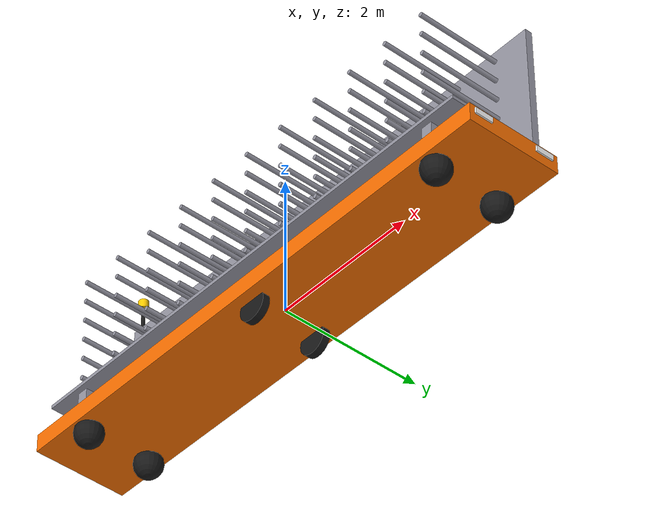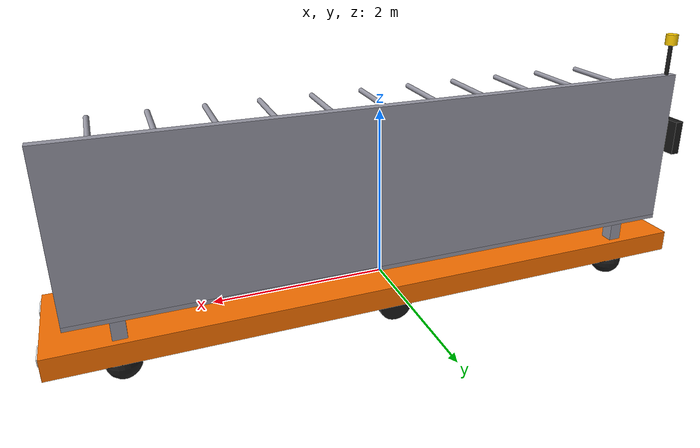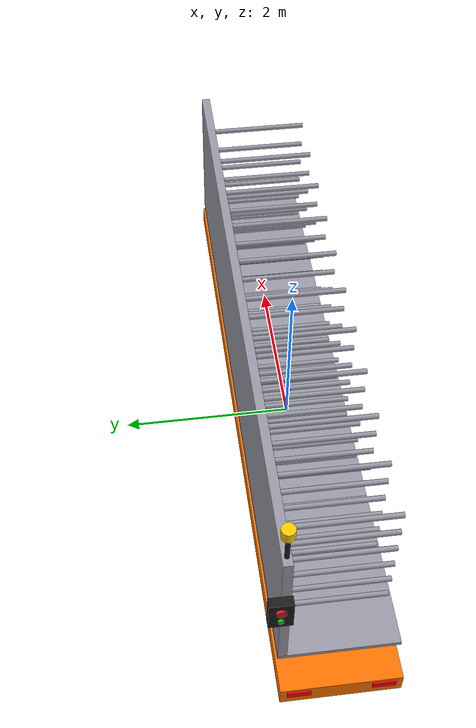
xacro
<?xml version="1.0"?>
<robot name="vector_v2" xmlns:xacro="http://www.ros.org/wiki/xacro">

  <xacro:arg name="namespace" default=""/>
  <xacro:property name="ns" value="$(arg namespace)"/>
  <xacro:property name="payload_mass" value="2000.0"/>

  <material name="heavy_orange"><color rgba="1.0 0.45 0.0 1.0"/></material>
  <material name="steel"><color rgba="0.6 0.6 0.65 1.0"/></material>
  <material name="industrial_black"><color rgba="0.1 0.1 0.1 1.0"/></material>
  <material name="headlight_white"><color rgba="1.0 1.0 1.0 1.0"/></material>
  <material name="taillight_red"><color rgba="1.0 0.0 0.0 1.0"/></material>
  <material name="beacon_yellow"><color rgba="1.0 0.8 0.0 1.0"/></material>
  <material name="button_red"><color rgba="0.8 0.1 0.1 1.0"/></material>
  <material name="button_green"><color rgba="0.1 0.8 0.1 1.0"/></material>

  <link name="base_link">
    <visual>
      <origin xyz="0 0 0" rpy="0 0 0"/>
      <geometry><box size="7.5 1.3 0.25"/></geometry>
      <material name="heavy_orange"/>
    </visual>

    <visual>
      <origin xyz="3.76 0.45 0.05" rpy="0 0 0"/>
      <geometry><box size="0.02 0.25 0.08"/></geometry>
      <material name="headlight_white"/>
    </visual>
    <visual>
      <origin xyz="3.76 -0.45 0.05" rpy="0 0 0"/>
      <geometry><box size="0.02 0.25 0.08"/></geometry>
      <material name="headlight_white"/>
    </visual>

    <visual>
      <origin xyz="-3.76 0.45 0.05" rpy="0 0 0"/>
      <geometry><box size="0.02 0.25 0.08"/></geometry>
      <material name="taillight_red"/>
    </visual>
    <visual>
      <origin xyz="-3.76 -0.45 0.05" rpy="0 0 0"/>
      <geometry><box size="0.02 0.25 0.08"/></geometry>
      <material name="taillight_red"/>
    </visual>

    <collision>
      <origin xyz="0 0 0" rpy="0 0 0"/>
      <geometry><box size="7.5 1.3 0.15"/></geometry>
    </collision>
    <inertial>
      <origin xyz="0 0 -0.5" rpy="0 0 0"/>
      <mass value="500.0"/>
      <inertia ixx="71.0" ixy="0.0" ixz="0.0" iyy="2344.0" iyz="0.0" izz="2414.0"/>
    </inertial>
  </link>

  <xacro:macro name="rod_column" params="x_val">
    <visual><origin xyz="${x_val} 0 0.5" rpy="1.5708 0 0"/><geometry><cylinder radius="0.03" length="1.2"/></geometry><material name="steel"/></visual>
    <visual><origin xyz="${x_val} 0 0.8" rpy="1.5708 0 0"/><geometry><cylinder radius="0.03" length="1.2"/></geometry><material name="steel"/></visual>
    <visual><origin xyz="${x_val} 0 1.1" rpy="1.5708 0 0"/><geometry><cylinder radius="0.03" length="1.2"/></geometry><material name="steel"/></visual>
    <visual><origin xyz="${x_val} 0 1.4" rpy="1.5708 0 0"/><geometry><cylinder radius="0.03" length="1.2"/></geometry><material name="steel"/></visual>
    <visual><origin xyz="${x_val} 0 1.7" rpy="1.5708 0 0"/><geometry><cylinder radius="0.03" length="1.2"/></geometry><material name="steel"/></visual>
    <visual><origin xyz="${x_val} 0 2.0" rpy="1.5708 0 0"/><geometry><cylinder radius="0.03" length="1.2"/></geometry><material name="steel"/></visual>
  </xacro:macro>

  <link name="payload_link">
    <visual><origin xyz="3.0 0.5 0.15" rpy="0 0 0"/><geometry><box size="0.15 0.15 0.3"/></geometry><material name="steel"/></visual>
    <visual><origin xyz="3.0 -0.5 0.15" rpy="0 0 0"/><geometry><box size="0.15 0.15 0.3"/></geometry><material name="steel"/></visual>
    <visual><origin xyz="-3.0 0.5 0.15" rpy="0 0 0"/><geometry><box size="0.15 0.15 0.3"/></geometry><material name="steel"/></visual>
    <visual><origin xyz="-3.0 -0.5 0.15" rpy="0 0 0"/><geometry><box size="0.15 0.15 0.3"/></geometry><material name="steel"/></visual>

    <visual><origin xyz="0 0 0.325" rpy="0 0 0"/><geometry><box size="7.0 1.3 0.05"/></geometry><material name="steel"/></visual>

    <visual><origin xyz="0 0.6 1.25" rpy="0 0 0"/><geometry><box size="7.0 0.1 1.8"/></geometry><material name="steel"/></visual>

    <visual><origin xyz="-3.55 0.66 1.4" rpy="0 0 0"/><geometry><box size="0.1 0.25 0.4"/></geometry><material name="industrial_black"/></visual>
    <visual><origin xyz="-3.61 0.66 1.48" rpy="0 1.5708 0"/><geometry><cylinder radius="0.05" length="0.04"/></geometry><material name="button_red"/></visual>
    <visual><origin xyz="-3.61 0.66 1.32" rpy="0 1.5708 0"/><geometry><cylinder radius="0.03" length="0.03"/></geometry><material name="button_green"/></visual>

    <visual>
      <origin xyz="-3.4 0.6 2.3" rpy="0 0 0"/>
      <geometry><cylinder radius="0.025" length="0.4"/></geometry>
      <material name="industrial_black"/>
    </visual>

    <xacro:rod_column x_val="-3.0"/>
    <xacro:rod_column x_val="-2.4"/>
    <xacro:rod_column x_val="-1.8"/>
    <xacro:rod_column x_val="-1.2"/>
    <xacro:rod_column x_val="-0.6"/>
    <xacro:rod_column x_val="0.0"/>
    <xacro:rod_column x_val="0.6"/>
    <xacro:rod_column x_val="1.2"/>
    <xacro:rod_column x_val="1.8"/>
    <xacro:rod_column x_val="2.4"/>
    <xacro:rod_column x_val="3.0"/>

    <collision>
      <origin xyz="0 0 1.25" rpy="0 0 0"/>
      <geometry><box size="7.0 1.5 2.5"/></geometry>
    </collision>
    <inertial>
      <origin xyz="0 0 -1.5" rpy="0 0 0"/>
      <mass value="${payload_mass}"/>
      <inertia
        ixx="${(payload_mass/12.0) * (1.5*1.5 + 2.5*2.5)}" ixy="0.0" ixz="0.0"
        iyy="${(payload_mass/12.0) * (7.0*7.0 + 2.5*2.5)}" iyz="0.0"
        izz="${(payload_mass/12.0) * (7.0*7.0 + 1.5*1.5)}"/>
    </inertial>
  </link>

  <joint name="payload_joint" type="fixed">
    <parent link="base_link"/>
    <child link="payload_link"/>
    <origin xyz="0 0 0.075" rpy="0 0 0"/>
  </joint>

  <link name="beacon_link">
    <visual>
      <origin xyz="0 0 0.06" rpy="0 0 0"/>
      <geometry><cylinder radius="0.07" length="0.12"/></geometry>
      <material name="beacon_yellow"/>
    </visual>
    <inertial>
      <mass value="0.05"/>
      <inertia ixx="0.0001" ixy="0" ixz="0" iyy="0.0001" iyz="0" izz="0.0001"/>
    </inertial>
  </link>

  <joint name="beacon_joint" type="continuous">
    <parent link="payload_link"/>
    <child link="beacon_link"/>
    <origin xyz="-3.4 0.6 2.5" rpy="0 0 0"/>
    <axis xyz="0 0 1"/>
  </joint>

  <gazebo reference="beacon_link">
    <material>Gazebo/Yellow</material>
    <light name="siren_beam_1" type="spot">
      <pose>0 0 0.06 0 1.5708 0</pose>
      <diffuse>1.0 0.8 0.0 1.0</diffuse>
      <specular>1.0 0.8 0.0 1.0</specular>
      <attenuation>
        <range>10.0</range>
        <linear>0.1</linear>
        <constant>0.1</constant>
        <quadratic>0.01</quadratic>
      </attenuation>
      <spot>
        <inner_angle>0.2</inner_angle>
        <outer_angle>1.0</outer_angle>
        <falloff>1.0</falloff>
      </spot>
      <cast_shadows>false</cast_shadows>
    </light>
    <light name="siren_beam_2" type="spot">
      <pose>0 0 0.06 0 -1.5708 0</pose>
      <diffuse>1.0 0.8 0.0 1.0</diffuse>
      <specular>1.0 0.8 0.0 1.0</specular>
      <attenuation>
        <range>10.0</range>
        <linear>0.1</linear>
        <constant>0.1</constant>
        <quadratic>0.01</quadratic>
      </attenuation>
      <spot>
        <inner_angle>0.2</inner_angle>
        <outer_angle>1.0</outer_angle>
        <falloff>1.0</falloff>
      </spot>
      <cast_shadows>false</cast_shadows>
    </light>
  </gazebo>

  <xacro:macro name="drive_wheel" params="prefix y_offset">
    <link name="${prefix}_wheel">
      <visual>
        <origin xyz="0 0 0" rpy="1.5708 0 0"/>
        <geometry><cylinder radius="0.2" length="0.1"/></geometry>
        <material name="industrial_black"/>
      </visual>
      <collision>
        <origin xyz="0 0 0" rpy="1.5708 0 0"/>
        <geometry><cylinder radius="0.2" length="0.1"/></geometry>
      </collision>
      <inertial>
        <mass value="50.0"/>
        <inertia ixx="0.5" ixy="0.0" ixz="0.0" iyy="0.5" iyz="0.0" izz="1.0"/>
      </inertial>
    </link>
    <joint name="${prefix}_joint" type="continuous">
      <parent link="base_link"/>
      <child link="${prefix}_wheel"/>
      <origin xyz="0 ${y_offset} -0.2" rpy="0 0 0"/>
      <axis xyz="0 1 0"/>
    </joint>
    <gazebo reference="${prefix}_wheel">
      <mu1>1.0</mu1>
      <mu2>1.0</mu2>
      <material>Gazebo/DarkGrey</material>
    </gazebo>
  </xacro:macro>

  <xacro:macro name="caster_wheel" params="prefix x_offset y_offset">
    <link name="${prefix}_wheel">
      <visual>
        <geometry><sphere radius="0.19"/></geometry>
        <material name="industrial_black"/>
      </visual>
      <collision>
        <geometry><sphere radius="0.19"/></geometry>
      </collision>
      <inertial>
        <mass value="20.0"/>
        <inertia ixx="0.3" ixy="0.0" ixz="0.0" iyy="0.3" iyz="0.0" izz="0.3"/>
      </inertial>
    </link>
    <joint name="${prefix}_joint" type="fixed">
      <parent link="base_link"/>
      <child link="${prefix}_wheel"/>
      <origin xyz="${x_offset} ${y_offset} -0.2" rpy="0 0 0"/>
    </joint>
    <gazebo reference="${prefix}_wheel">
      <mu1>0.0</mu1>
      <mu2>0.0</mu2>
      <material>Gazebo/DarkGrey</material>
    </gazebo>
  </xacro:macro>

  <xacro:drive_wheel prefix="drive_left" y_offset="0.45"/>
  <xacro:drive_wheel prefix="drive_right" y_offset="-0.45"/>
  <xacro:caster_wheel prefix="front_left" x_offset="3.0" y_offset="0.45"/>
  <xacro:caster_wheel prefix="front_right" x_offset="3.0" y_offset="-0.45"/>
  <xacro:caster_wheel prefix="rear_left" x_offset="-3.0" y_offset="0.45"/>
  <xacro:caster_wheel prefix="rear_right" x_offset="-3.0" y_offset="-0.45"/>

  <link name="camera_link">
    <inertial>
      <mass value="0.1"/>
      <inertia ixx="0.001" ixy="0" ixz="0" iyy="0.001" iyz="0" izz="0.001"/>
    </inertial>
  </link>
  <joint name="camera_joint" type="fixed">
    <parent link="base_link"/>
    <child link="camera_link"/>
    <origin xyz="4.3 0 0.8" rpy="0 1.5708 0"/>
  </joint>

  <gazebo reference="camera_link">
    <sensor name="camera" type="camera">
      <update_rate>10.0</update_rate>
      <camera>
        <horizontal_fov>2.5</horizontal_fov>
        <image><width>160</width><height>120</height></image>
      </camera>
      <topic>/${ns}/camera/image_raw</topic>
    </sensor>
  </gazebo>

  <gazebo>
    <plugin filename="gz-sim-diff-drive-system" name="gz::sim::systems::DiffDrive">
      <left_joint>drive_left_joint</left_joint>
      <right_joint>drive_right_joint</right_joint>
      <wheel_separation>0.9</wheel_separation>
      <wheel_radius>0.2</wheel_radius>
      <topic>/${ns}/cmd_vel</topic>
      <max_linear_acceleration>10.0</max_linear_acceleration>
      <max_angular_acceleration>20.0</max_angular_acceleration>
    </plugin>
    <plugin filename="libgz-sim-joint-velocity-controller-system.so" name="gz::sim::systems::JointVelocityController">
      <joint_name>beacon_joint</joint_name>
      <topic>/${ns}/beacon_spin</topic>
      <initial_velocity>15.0</initial_velocity>
    </plugin>
    <plugin filename="gz-sim-joint-velocity-controller-system" name="gz::sim::systems::JointVelocityController">
      <joint_name>beacon_joint</joint_name>
      <topic>/${ns}/beacon_spin</topic>
      <initial_velocity>15.0</initial_velocity> </plugin>
  </gazebo>

</robot>
